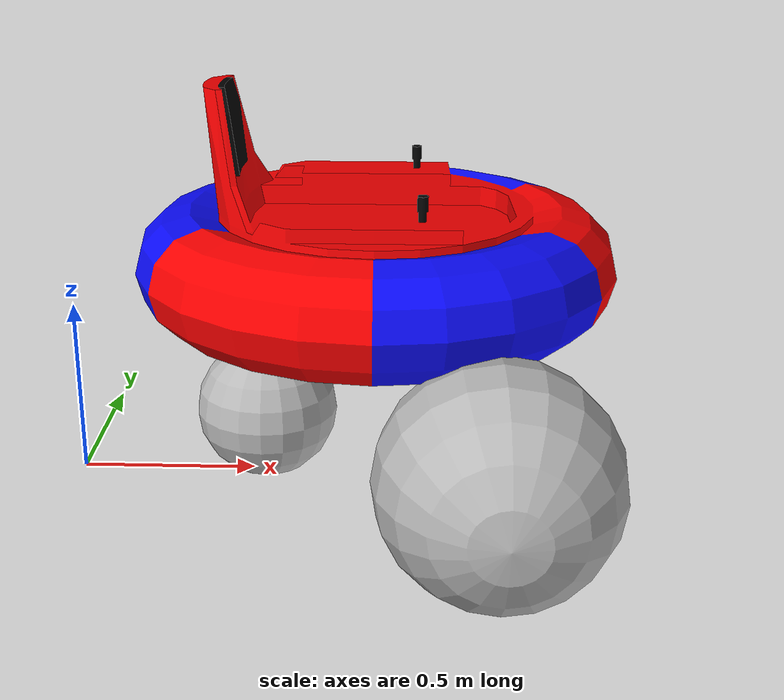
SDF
<?xml version="1.0"?>
<sdf version="1.6">
    <model name='vehicle'>
      <pose>3 0 0.325 0 -0 0</pose>

      <link name='chassis'>
        <pose>-0.151427 -0 0.175 0 -0 0</pose>
        <inertial>
          <mass>1.14395</mass>
          <inertia>
            <ixx>0.126164</ixx>
            <ixy>0</ixy>
            <ixz>0</ixz>
            <iyy>0.416519</iyy>
            <iyz>0</iyz>
            <izz>0.481014</izz>
          </inertia>
        </inertial>
        <visual name='visual'>
          <geometry>
            <mesh><uri>file://red-vehicle/meshes/TorusCart_red_darkblue.dae</uri></mesh>
          </geometry>
        </visual>
        <collision name='collision'>
          <geometry>
            <box>
              <size>2.01142 1 0.568726</size>
            </box>
          </geometry>
        </collision>
      </link>

      <link name='left_wheel'>
        <pose>-1.854282 0.625029 -0.025 -1.5707 0 0</pose>
        <inertial>
          <mass>2</mass>
          <inertia>
            <ixx>0.145833</ixx>
            <ixy>0</ixy>
            <ixz>0</ixz>
            <iyy>0.145833</iyy>
            <iyz>0</iyz>
            <izz>0.125</izz>
          </inertia>
        </inertial>
        <visual name='visual'>
          <geometry>
            <sphere>
              <radius>0.3</radius>
            </sphere>
          </geometry>
        </visual>
        <collision name='collision'>
          <geometry>
            <sphere>
              <radius>0.3</radius>
            </sphere>
          </geometry>
          <surface>
            <friction>
              <ode>
                <mu>1</mu>
                <mu2>1</mu2>
                <slip1>0</slip1>
                <slip2>0</slip2>
              </ode>
            </friction>
            <contact>
              <ode>
                <soft_cfm>0</soft_cfm>
                <soft_erp>0.2</soft_erp>
                <kp>1e+13</kp>
                <kd>1</kd>
                <max_vel>0.01</max_vel>
                <min_depth>0.01</min_depth>
              </ode>
            </contact>
          </surface>
        </collision>
      </link>

      <link name='right_wheel'>
        <pose>-1.854282 -0.625029 -0.025 -1.5707 0 0</pose>
        <inertial>
          <mass>2</mass>
          <inertia>
            <ixx>0.145833</ixx>
            <ixy>0</ixy>
            <ixz>0</ixz>
            <iyy>0.145833</iyy>
            <iyz>0</iyz>
            <izz>0.125</izz>
          </inertia>
        </inertial>
        <visual name='visual'>
          <geometry>
            <sphere>
              <radius>0.3</radius>
            </sphere>
          </geometry>
        </visual>
        <collision name='collision'>
          <geometry>
            <sphere>
              <radius>0.3</radius>
            </sphere>
          </geometry>
          <surface>
            <friction>
              <ode>
                <mu>1</mu>
                <mu2>1</mu2>
                <slip1>0</slip1>
                <slip2>0</slip2>
              </ode>
            </friction>
            <contact>
              <ode>
                <soft_cfm>0</soft_cfm>
                <soft_erp>0.2</soft_erp>
                <kp>1e+13</kp>
                <kd>1</kd>
                <max_vel>0.01</max_vel>
                <min_depth>0.01</min_depth>
              </ode>
            </contact>
          </surface>
        </collision>
      </link>

      <link name='caster'>
        <pose>-2.457138 -0 -0.125 0 -0 0</pose>
        <inertial>
          <mass>1</mass>
          <inertia>
            <ixx>0.1</ixx>
            <ixy>0</ixy>
            <ixz>0</ixz>
            <iyy>0.1</iyy>
            <iyz>0</iyz>
            <izz>0.1</izz>
          </inertia>
        </inertial>
        <visual name='visual'>
          <geometry>
            <sphere>
              <radius>0.2</radius>
            </sphere>
          </geometry>
        </visual>
        <collision name='collision'>
          <geometry>
            <sphere>
              <radius>0.2</radius>
            </sphere>
          </geometry>
        </collision>
      </link>

      <joint name='left_wheel_joint' type='revolute'>
        <parent>chassis</parent>
        <child>left_wheel</child>
        <axis>
          <xyz>0 0 1</xyz>
          <limit>
            <lower>-1.79769e+308</lower>
            <upper>1.79769e+308</upper>
          </limit>
        </axis>
      </joint>

      <joint name='right_wheel_joint' type='revolute'>
        <parent>chassis</parent>
        <child>right_wheel</child>
        <axis>
          <xyz>0 0 1</xyz>
          <limit>
            <lower>-1.79769e+308</lower>
            <upper>1.79769e+308</upper>
          </limit>
        </axis>
      </joint>

      <joint name='caster_wheel' type='ball'>
        <parent>chassis</parent>
        <child>caster</child>
      </joint>

      <plugin name='diff_drive' filename='libgazebo_ros_diff_drive.so'>

        <ros>
          <namespace>/redcar</namespace>
          <remapping>cmd_vel:=cmd_redcar</remapping>
          <remapping>odom:=odom_redcar</remapping>
        </ros>

        <!-- wheels -->
        <left_joint>left_wheel_joint</left_joint>
        <right_joint>right_wheel_joint</right_joint>

        <!-- kinematics -->
        <wheel_separation>1.25</wheel_separation>
        <wheel_diameter>0.6</wheel_diameter>

        <!-- limits -->
        <max_wheel_torque>20</max_wheel_torque>
        <max_wheel_acceleration>1.0</max_wheel_acceleration>

        <!-- output -->
        <publish_odom>true</publish_odom>
        <publish_odom_tf>true</publish_odom_tf>
        <publish_wheel_tf>true</publish_wheel_tf>

        <odometry_frame>odom_red</odometry_frame>
        <robot_base_frame>chassis</robot_base_frame>

      </plugin>

    </model>
</sdf>
